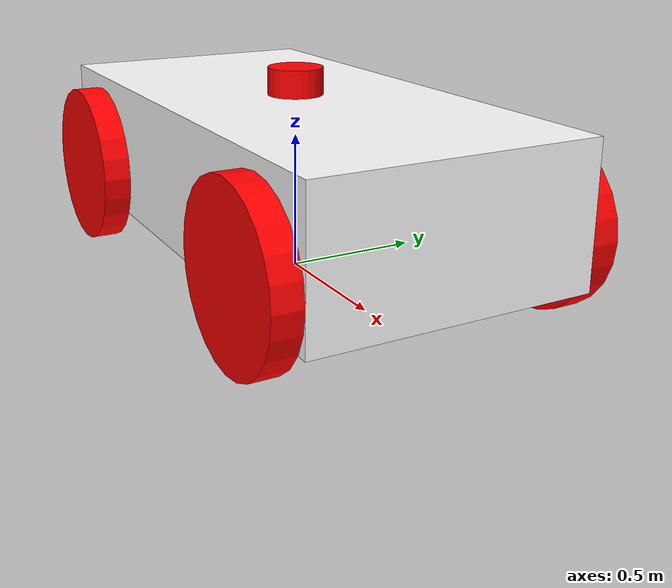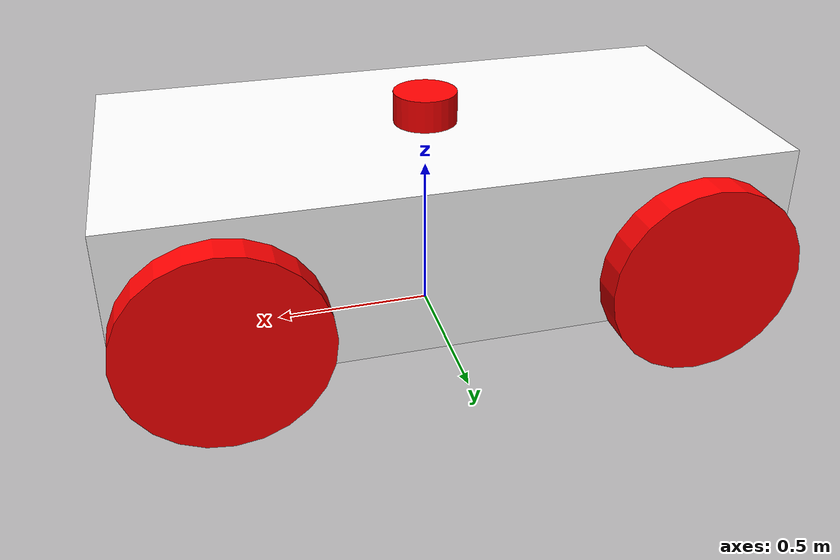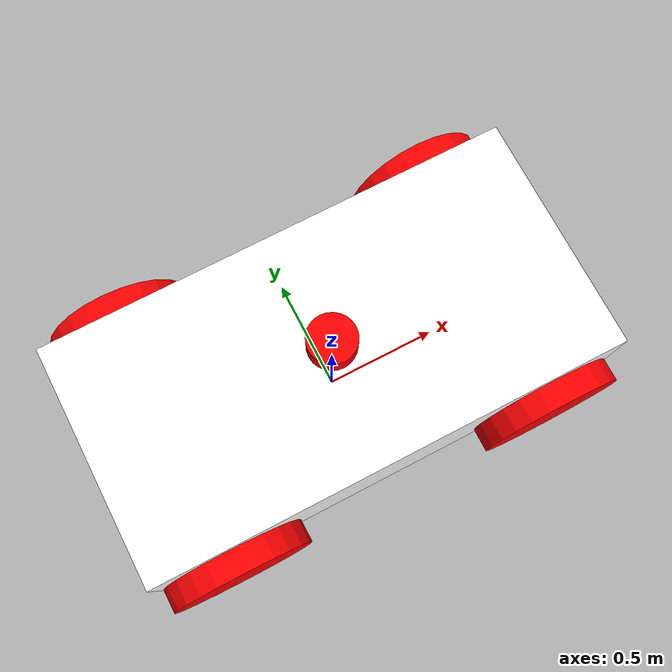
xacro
<?xml version="1.0"?>

<robot xmlns:xacro="http://www.ros.org/wiki/xacro" name="car">

  <xacro:property name="body_length" value="2" />
  <xacro:property name="body_width" value="1" />
  <xacro:property name="body_height" value="0.5" />
  <xacro:property name="body_mass" value="100" />
  <xacro:property name="wheel_length" value="0.1" />
  <xacro:property name="wheel_radius" value="0.3" />

  <link name="base_link" />

  <joint name="chassis-joint" type="fixed">
    <parent link="base_link" />
    <child link="chassis" />
    <origin xyz="0 0 ${body_height / 2 + wheel_radius / 2}" rpy="0 0 0" />
  </joint>

  <material name="yellow">
    <color rgba="1 0 0 1" />
  </material>

  <material name="white">
    <color rgba="1 1 1 1" />
  </material>

  <xacro:macro name="wheel" params="position origin">
    <link name="${position}-wheel">
      <visual>
        <geometry>
          <cylinder radius="0.3" length="0.1" />
        </geometry>
        <material name="yellow" />
      </visual>

      <collision>
        <geometry>
          <cylinder radius="0.3" length="0.1" />
        </geometry>
      </collision>

      <inertial>
        <mass value="5" />
        <inertia ixx="0.1166" ixy="0.0" ixz="0.0" iyy="0.1166" iyz="0.0" izz="0.225" />
      </inertial>
    </link>

    <joint name="${position}-wheel-joint" type="continuous">
      <parent link="chassis" />
      <child link="${position}-wheel" />
      <axis xyz="0 0 1" />
      <origin xyz="${origin}" rpy="-1.57079632679 0 0" />
    </joint>
  </xacro:macro>

  <link name="chassis">
    <visual>
      <geometry>
        <box size="${body_length} ${body_width} ${body_height}" />
      </geometry>
      <material name="white" />
    </visual>

    <collision>
      <geometry>
        <box size="${body_length} ${body_width} ${body_height}" />
      </geometry>
    </collision>

    <inertial>
      <mass value="${body_mass}" />
      <inertia ixx="10.416" ixy="0.0" ixz="0.0" iyy="35.416" iyz="0.0" izz="41.66" />
    </inertial>
  </link>

  <link name="lidar">
    <visual>
      <geometry>
        <cylinder radius="0.1" length="0.1" />
      </geometry>
      <material name="yellow" />
      <origin xyz="0 0 0.05" rpy="0 0 0" />
    </visual>

    <collision>
      <geometry>
        <cylinder radius="0.1" length="0.1" />
      </geometry>
      <origin xyz="0 0 0.05" rpy="0 0 0" />
    </collision>

    <inertial>
      <mass value="0.1" />
      <inertia ixx="0.0001" ixy="0.0" ixz="0.0" iyy="0.0001" iyz="0.0" izz="0.0001" />
      <origin xyz="0 0 0.05" rpy="0 0 0" />
    </inertial>
  </link>

  <joint name="lidar-joint" type="fixed">
    <parent link="chassis" />
    <child link="lidar" />
    <origin xyz="0 0 ${body_height / 2}" rpy="0 0 0" />
  </joint>

  <xacro:wheel position="left-back"
    origin="${-body_length/2+wheel_radius} ${-body_width/2-wheel_length/2} ${-body_height / 2 + wheel_radius / 2}" />
  <xacro:wheel position="left-front"
    origin="${body_length/2-wheel_radius} ${-body_width/2-wheel_length/2} ${-body_height / 2 + wheel_radius / 2}" />
  <xacro:wheel position="right-front"
    origin="${body_length/2-wheel_radius} ${body_width/2+wheel_length/2} ${-body_height / 2 + wheel_radius / 2}" />
  <xacro:wheel position="right-back"
    origin="${-body_length/2+wheel_radius} ${body_width/2+wheel_length/2} ${-body_height / 2 + wheel_radius / 2}" />

  <gazebo reference="lidar">
    <sensor name='gpu_lidar' type='gpu_lidar'>
      <pose relative_to='lidar'>
        0 0 0 0 0 0
      </pose>
      <topic>scan</topic>
      <update_rate>10</update_rate>
      <ray>
        <noise>
          <type>gaussian</type>
          <mean>0.0</mean>
          <stddev>0.05</stddev>
        </noise>
        <scan>
          <horizontal>
            <samples>640</samples>
            <resolution>1</resolution>
            <min_angle>-1.396263</min_angle>
            <max_angle>1.396263</max_angle>
          </horizontal>
          <vertical>
            <samples>1</samples>
            <resolution>0.01</resolution>
            <min_angle>0</min_angle>
            <max_angle>0</max_angle>
          </vertical>
        </scan>
        <range>
          <min>0.08</min>
          <max>20.0</max>
          <resolution>0.01</resolution>
        </range>
      </ray>
      <always_on>1</always_on>
      <visualize>true</visualize>
    </sensor>

    <sensor name="imu_sensor" type="imu">
      <always_on>1</always_on>
      <update_rate>100</update_rate>
      <visualize>true</visualize>
      <topic>imu</topic>

      <imu>
        <angular_velocity>
          <x>
            <noise type="gaussian">
              <mean>0.0</mean>
              <stddev>2e-4</stddev>
              <bias_mean>0.0000075</bias_mean>
              <bias_stddev>0.0000008</bias_stddev>
            </noise>
          </x>

          <y>
            <noise type="gaussian">
              <mean>0.0</mean>
              <stddev>2e-4</stddev>
              <bias_mean>0.0000075</bias_mean>
            </noise>
          </y>

          <z>
            <noise type="gaussian">
              <mean>0.0</mean>
              <stddev>2e-4</stddev>
              <bias_mean>0.0000075</bias_mean>
              <bias_stddev>0.0000008</bias_stddev>
            </noise>
          </z>
        </angular_velocity>

        <linear_acceleration>
          <x>
            <noise type="gaussian">
              <mean>0.0</mean>
              <stddev>1.7e-2</stddev>
              <bias_mean>0.1</bias_mean>
              <bias_stddev>0.001</bias_stddev>
            </noise>
          </x>

          <y>
            <noise type="gaussian">
              <mean>0.0</mean>
              <stddev>1.7e-2</stddev>
              <bias_mean>0.1</bias_mean>
              <bias_stddev>0.001</bias_stddev>
            </noise>
          </y>

          <z>
            <noise type="gaussian">
              <mean>0.0</mean>
              <stddev>1.7e-2</stddev>
              <bias_mean>0.1</bias_mean>
              <bias_stddev>0.001</bias_stddev>
            </noise>
          </z>
        </linear_acceleration>
      </imu>
    </sensor>

  </gazebo>

  <gazebo>
    <plugin filename="gz-sim-imu-system"
      name="gz::sim::systems::Imu">
    </plugin>

    <plugin
      filename="gz-sim-joint-state-publisher-system"
      name="gz::sim::systems::JointStatePublisher">
      <joint_name>left-back-wheel-joint</joint_name>
      <joint_name>left-front-wheel-joint</joint_name>
      <joint_name>right-back-wheel-joint</joint_name>
      <joint_name>right-front-wheel-joint</joint_name>
    </plugin>

    <plugin
      filename="gz-sim-diff-drive-system"
      name="gz::sim::systems::DiffDrive">
      <left_joint>left-front-wheel-joint</left_joint>
      <left_joint>left-back-wheel-joint</left_joint>
      <right_joint>right-front-wheel-joint</right_joint>
      <right_joint>right-back-wheel-joint</right_joint>

      <child_frame_id>base_link</child_frame_id>

      <wheel_separation>1</wheel_separation>
      <wheel_radius>0.3</wheel_radius>

      <odom_publish_frequency>1</odom_publish_frequency>
      <topic>cmd_vel</topic>
    </plugin>

    <plugin filename="gz-sim-triggered-publisher-system"
      name="gz::sim::systems::TriggeredPublisher">
      <input type="gz.msgs.Int32" topic="/keyboard/keypress">
        <match field="data">16777235</match>
      </input>
      <output type="gz.msgs.Twist" topic="/cmd_vel">
        linear: {x: 2}, angular: {z: 0.0}
      </output>
    </plugin>

    <plugin filename="gz-sim-triggered-publisher-system"
      name="gz::sim::systems::TriggeredPublisher">
      <input type="gz.msgs.Int32" topic="/keyboard/keypress">
        <match field="data">16777237</match>
      </input>
      <output type="gz.msgs.Twist" topic="/cmd_vel">
        linear: {x: -2}, angular: {z: 0.0}
      </output>
    </plugin>

    <plugin filename="gz-sim-triggered-publisher-system"
      name="gz::sim::systems::TriggeredPublisher">
      <input type="gz.msgs.Int32" topic="/keyboard/keypress">
        <match field="data">16777236</match>
      </input>
      <output type="gz.msgs.Twist" topic="/cmd_vel">
        linear: {x: 0}, angular: {z: 10.0}
      </output>
    </plugin>

		<plugin filename="gz-sim-triggered-publisher-system"
			name="gz::sim::systems::TriggeredPublisher">
			<input type="gz.msgs.Int32" topic="/keyboard/keypress">
				<match field="data">16777234</match>
			</input>
			<output type="gz.msgs.Twist" topic="/cmd_vel">
				linear: {x: 0}, angular: {z: -10.0}
			</output>
		</plugin>

    <plugin
      filename="gz-sim-odometry-publisher-system"
      name="gz::sim::systems::OdometryPublisher">
      <odom_frame>car/odom</odom_frame>
      <robot_base_frame>base_link</robot_base_frame>
    </plugin>
  </gazebo>

</robot>
